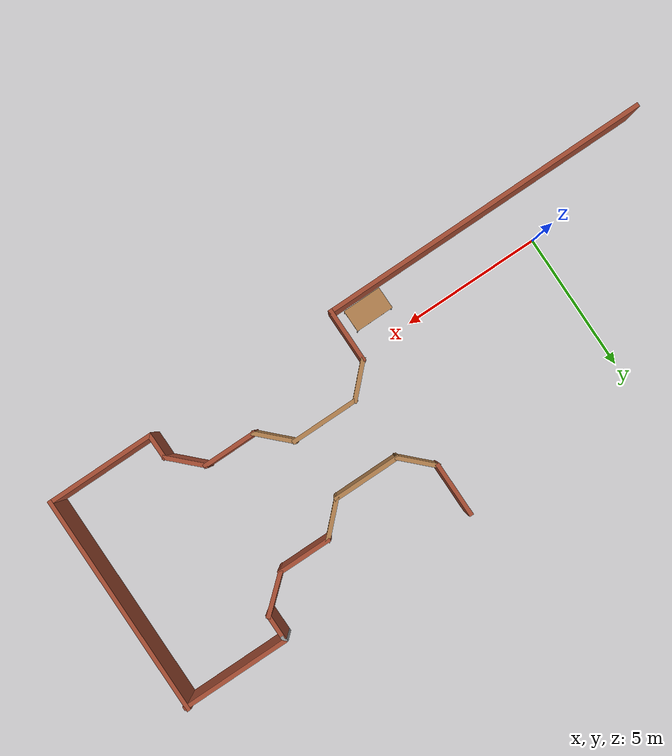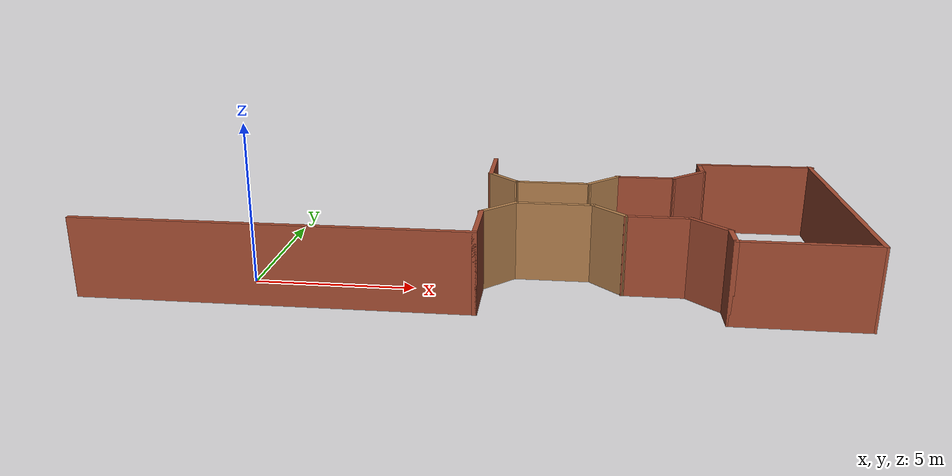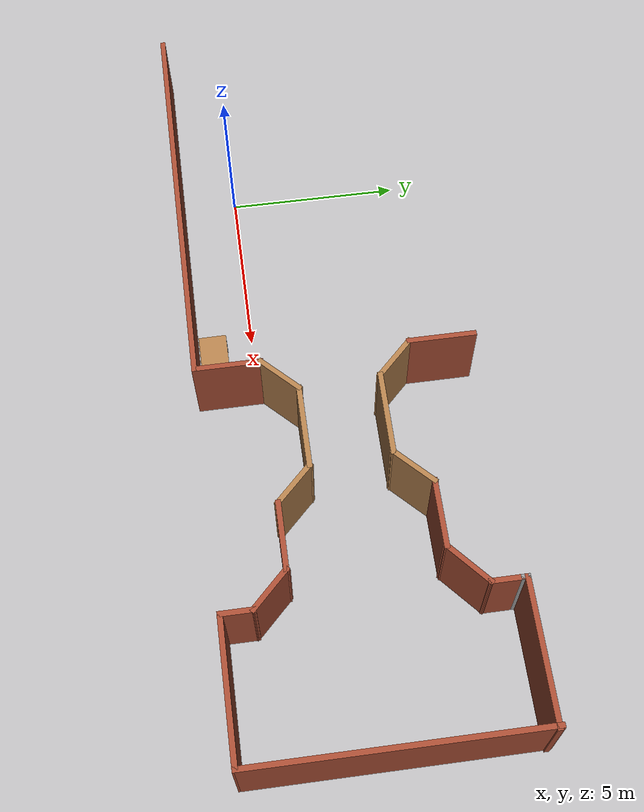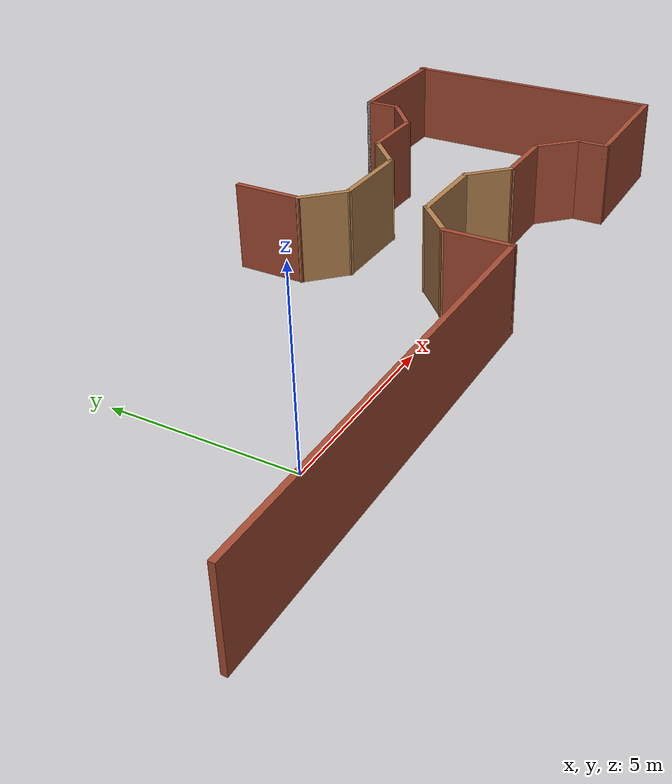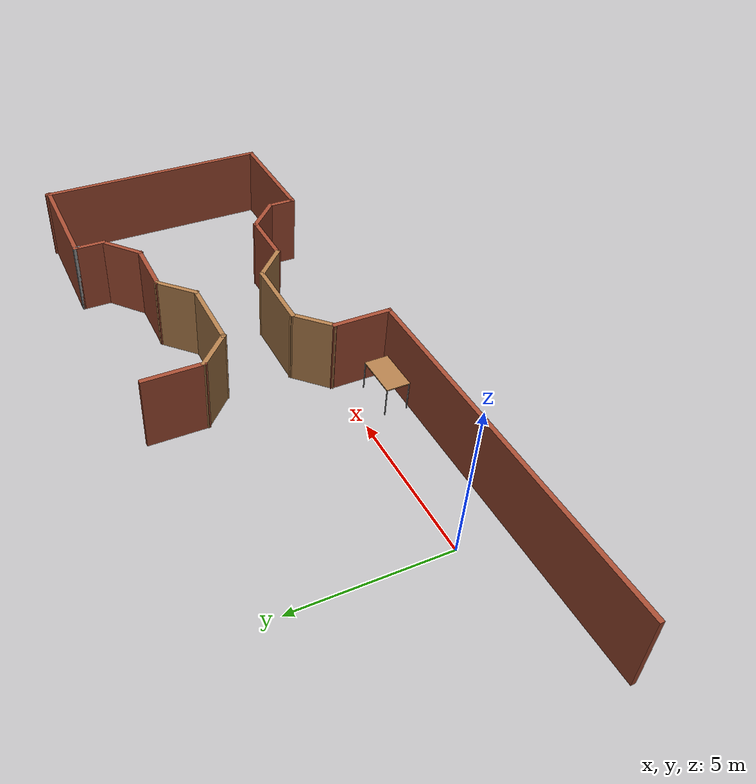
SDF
<sdf version="1.6">
 <world name="default">
  <model name="table">
   <static>0</static>
   <link name="link">
    <collision name="surface">
     <pose>0 0 1 0 -0 0</pose>
     <geometry><box><size>1.5 0.8 0.03</size></box></geometry>
     <surface><friction><ode><mu>0.6</mu><mu2>0.6</mu2></ode></friction></surface>
    </collision>
    <visual name="visual1">
     <pose>0 0 1 0 -0 0</pose>
     <geometry><box><size>1.4 0.8 0.04</size></box></geometry>
     <material>
      <script><uri>file://media/materials/scripts/gazebo.material</uri><name>Gazebo/Wood</name></script>
     </material>
    </visual>
    <collision name="front_left_leg">
     <pose>0.68 0.38 0.5 0 -0 0</pose>
     <geometry><cylinder><radius>0.02</radius><length>1</length></cylinder></geometry>
    </collision>
    <visual name="front_left_leg">
     <pose>0.68 0.38 0.5 0 -0 0</pose>
     <geometry><cylinder><radius>0.02</radius><length>1</length></cylinder></geometry>
     <material>
      <script><uri>file://media/materials/scripts/gazebo.material</uri><name>Gazebo/Grey</name></script>
     </material>
    </visual>
    <collision name="front_right_leg">
     <pose>0.68 -0.38 0.5 0 -0 0</pose>
     <geometry><cylinder><radius>0.02</radius><length>1</length></cylinder></geometry>
    </collision>
    <visual name="front_right_leg">
     <pose>0.68 -0.38 0.5 0 -0 0</pose>
     <geometry><cylinder><radius>0.02</radius><length>1</length></cylinder></geometry>
     <material>
      <script><uri>file://media/materials/scripts/gazebo.material</uri><name>Gazebo/Grey</name></script>
     </material>
    </visual>
    <collision name="back_right_leg">
     <pose>-0.68 -0.38 0.5 0 -0 0</pose>
     <geometry><cylinder><radius>0.02</radius><length>1</length></cylinder></geometry>
    </collision>
    <visual name="back_right_leg">
     <pose>-0.68 -0.38 0.5 0 -0 0</pose>
     <geometry><cylinder><radius>0.02</radius><length>1</length></cylinder></geometry>
     <material>
      <script><uri>file://media/materials/scripts/gazebo.material</uri><name>Gazebo/Grey</name></script>
     </material>
    </visual>
    <collision name="back_left_leg">
     <pose>-0.68 0.38 0.5 0 -0 0</pose>
     <geometry><cylinder><radius>0.02</radius><length>1</length></cylinder></geometry>
    </collision>
    <visual name="back_left_leg">
     <pose>-0.68 0.38 0.5 0 -0 0</pose>
     <geometry><cylinder><radius>0.02</radius><length>1</length></cylinder></geometry>
     <material>
      <script><uri>file://media/materials/scripts/gazebo.material</uri><name>Gazebo/Grey</name></script>
     </material>
    </visual>
    <inertial>
     <inertia><ixx>1</ixx><ixy>0</ixy><ixz>0</ixz><iyy>1</iyy><iyz>0</iyz><izz>1</izz></inertia>
     <mass>1</mass>
    </inertial>
   </link>
   <pose>5.92545 -1.12492 -7e-06 -0 4e-06 0.006025</pose>
  </model>
  <model name="NewEnv1_0">
   <link name="Wall_24">
    <pose>-0.034569 -4.00322 0 0 -0 0</pose>
    <visual name="Wall_24_Visual">
     <pose>0 0 1.25 0 -0 0</pose>
     <geometry><box><size>12 0.15 2.5</size></box></geometry>
     <material>
      <script><uri>file://media/materials/scripts/gazebo.material</uri><name>Gazebo/Bricks</name></script>
      <ambient>1 1 1 1</ambient>
      <diffuse>1 1 1 1</diffuse>
      <specular>0.2 0.2 0.2 1</specular>
      <emissive>0 0 0 1</emissive>
     </material>
    </visual>
    <collision name="Wall_24_Collision">
     <pose>0 0 1.25 0 -0 0</pose>
     <geometry><box><size>12 0.15 2.5</size></box></geometry>
     <surface>
      <friction>
       <ode><mu>1</mu><mu2>1</mu2><fdir1>0 0 0</fdir1><slip1>0</slip1><slip2>0</slip2></ode>
       <torsional>
        <coefficient>1</coefficient>
        <patch_radius>0</patch_radius>
        <surface_radius>0</surface_radius>
        <use_patch_radius>1</use_patch_radius>
        <ode><slip>0</slip></ode>
       </torsional>
      </friction>
      <bounce><restitution_coefficient>0</restitution_coefficient><threshold>1e+06</threshold></bounce>
      <contact>
       <collide_without_contact>0</collide_without_contact>
       <collide_without_contact_bitmask>1</collide_without_contact_bitmask>
       <collide_bitmask>1</collide_bitmask>
       <ode>
        <soft_cfm>0</soft_cfm>
        <soft_erp>0.2</soft_erp>
        <kp>1e+13</kp>
        <kd>1</kd>
        <max_vel>0.01</max_vel>
        <min_depth>0</min_depth>
       </ode>
       <bullet>
        <split_impulse>1</split_impulse>
        <split_impulse_penetration_threshold>-0.01</split_impulse_penetration_threshold>
        <soft_cfm>0</soft_cfm>
        <soft_erp>0.2</soft_erp>
        <kp>1e+13</kp>
        <kd>1</kd>
       </bullet>
      </contact>
     </surface>
    </collision>
   </link>
   <link name="Wall_25">
    <pose>5.89043 -3.07822 0 0 -0 1.5708</pose>
    <visual name="Wall_25_Visual">
     <pose>0 0 1.25 0 -0 0</pose>
     <geometry><box><size>2 0.15 2.5</size></box></geometry>
     <material>
      <script><uri>file://media/materials/scripts/gazebo.material</uri><name>Gazebo/Bricks</name></script>
      <ambient>1 1 1 1</ambient>
      <diffuse>1 1 1 1</diffuse>
      <specular>0.2 0.2 0.2 1</specular>
      <emissive>0 0 0 1</emissive>
     </material>
    </visual>
    <collision name="Wall_25_Collision">
     <pose>0 0 1.25 0 -0 0</pose>
     <geometry><box><size>2 0.15 2.5</size></box></geometry>
     <surface>
      <friction>
       <ode><mu>1</mu><mu2>1</mu2><fdir1>0 0 0</fdir1><slip1>0</slip1><slip2>0</slip2></ode>
       <torsional>
        <coefficient>1</coefficient>
        <patch_radius>0</patch_radius>
        <surface_radius>0</surface_radius>
        <use_patch_radius>1</use_patch_radius>
        <ode><slip>0</slip></ode>
       </torsional>
      </friction>
      <bounce><restitution_coefficient>0</restitution_coefficient><threshold>1e+06</threshold></bounce>
      <contact>
       <collide_without_contact>0</collide_without_contact>
       <collide_without_contact_bitmask>1</collide_without_contact_bitmask>
       <collide_bitmask>1</collide_bitmask>
       <ode>
        <soft_cfm>0</soft_cfm>
        <soft_erp>0.2</soft_erp>
        <kp>1e+13</kp>
        <kd>1</kd>
        <max_vel>0.01</max_vel>
        <min_depth>0</min_depth>
       </ode>
       <bullet>
        <split_impulse>1</split_impulse>
        <split_impulse_penetration_threshold>-0.01</split_impulse_penetration_threshold>
        <soft_cfm>0</soft_cfm>
        <soft_erp>0.2</soft_erp>
        <kp>1e+13</kp>
        <kd>1</kd>
       </bullet>
      </contact>
     </surface>
    </collision>
   </link>
   <link name="Wall_26">
    <pose>6.36773 -1.67592 0 0 -0 0.785398</pose>
    <visual name="Wall_26_Visual">
     <pose>0 0 1.25 0 -0 0</pose>
     <geometry><box><size>1.5 0.15 2.5</size></box></geometry>
     <material>
      <script><uri>file://media/materials/scripts/gazebo.material</uri><name>Gazebo/Wood</name></script>
      <ambient>1 1 1 1</ambient>
      <diffuse>1 1 1 1</diffuse>
      <specular>0.2 0.2 0.2 1</specular>
      <emissive>0 0 0 1</emissive>
     </material>
    </visual>
    <collision name="Wall_26_Collision">
     <pose>0 0 1.25 0 -0 0</pose>
     <geometry><box><size>1.5 0.15 2.5</size></box></geometry>
     <surface>
      <friction>
       <ode><mu>1</mu><mu2>1</mu2><fdir1>0 0 0</fdir1><slip1>0</slip1><slip2>0</slip2></ode>
       <torsional>
        <coefficient>1</coefficient>
        <patch_radius>0</patch_radius>
        <surface_radius>0</surface_radius>
        <use_patch_radius>1</use_patch_radius>
        <ode><slip>0</slip></ode>
       </torsional>
      </friction>
      <bounce><restitution_coefficient>0</restitution_coefficient><threshold>1e+06</threshold></bounce>
      <contact>
       <collide_without_contact>0</collide_without_contact>
       <collide_without_contact_bitmask>1</collide_without_contact_bitmask>
       <collide_bitmask>1</collide_bitmask>
       <ode>
        <soft_cfm>0</soft_cfm>
        <soft_erp>0.2</soft_erp>
        <kp>1e+13</kp>
        <kd>1</kd>
        <max_vel>0.01</max_vel>
        <min_depth>0</min_depth>
       </ode>
       <bullet>
        <split_impulse>1</split_impulse>
        <split_impulse_penetration_threshold>-0.01</split_impulse_penetration_threshold>
        <soft_cfm>0</soft_cfm>
        <soft_erp>0.2</soft_erp>
        <kp>1e+13</kp>
        <kd>1</kd>
       </bullet>
      </contact>
     </surface>
    </collision>
   </link>
   <link name="Wall_27">
    <pose>8.02003 -1.19863 0 0 -0 0</pose>
    <visual name="Wall_27_Visual">
     <pose>0 0 1.25 0 -0 0</pose>
     <geometry><box><size>2.5 0.15 2.5</size></box></geometry>
     <material>
      <script><uri>file://media/materials/scripts/gazebo.material</uri><name>Gazebo/Wood</name></script>
      <ambient>1 1 1 1</ambient>
      <diffuse>1 1 1 1</diffuse>
      <specular>0.2 0.2 0.2 1</specular>
      <emissive>0 0 0 1</emissive>
     </material>
    </visual>
    <collision name="Wall_27_Collision">
     <pose>0 0 1.25 0 -0 0</pose>
     <geometry><box><size>2.5 0.15 2.5</size></box></geometry>
     <surface>
      <friction>
       <ode><mu>1</mu><mu2>1</mu2><fdir1>0 0 0</fdir1><slip1>0</slip1><slip2>0</slip2></ode>
       <torsional>
        <coefficient>1</coefficient>
        <patch_radius>0</patch_radius>
        <surface_radius>0</surface_radius>
        <use_patch_radius>1</use_patch_radius>
        <ode><slip>0</slip></ode>
       </torsional>
      </friction>
      <bounce><restitution_coefficient>0</restitution_coefficient><threshold>1e+06</threshold></bounce>
      <contact>
       <collide_without_contact>0</collide_without_contact>
       <collide_without_contact_bitmask>1</collide_without_contact_bitmask>
       <collide_bitmask>1</collide_bitmask>
       <ode>
        <soft_cfm>0</soft_cfm>
        <soft_erp>0.2</soft_erp>
        <kp>1e+13</kp>
        <kd>1</kd>
        <max_vel>0.01</max_vel>
        <min_depth>0</min_depth>
       </ode>
       <bullet>
        <split_impulse>1</split_impulse>
        <split_impulse_penetration_threshold>-0.01</split_impulse_penetration_threshold>
        <soft_cfm>0</soft_cfm>
        <soft_erp>0.2</soft_erp>
        <kp>1e+13</kp>
        <kd>1</kd>
       </bullet>
      </contact>
     </surface>
    </collision>
   </link>
   <link name="Wall_28">
    <pose>9.67232 -1.67592 0 0 0 -0.785398</pose>
    <visual name="Wall_28_Visual">
     <pose>0 0 1.25 0 -0 0</pose>
     <geometry><box><size>1.5 0.15 2.5</size></box></geometry>
     <material>
      <script><uri>file://media/materials/scripts/gazebo.material</uri><name>Gazebo/Wood</name></script>
      <ambient>1 1 1 1</ambient>
      <diffuse>1 1 1 1</diffuse>
      <specular>0.2 0.2 0.2 1</specular>
      <emissive>0 0 0 1</emissive>
     </material>
    </visual>
    <collision name="Wall_28_Collision">
     <pose>0 0 1.25 0 -0 0</pose>
     <geometry><box><size>1.5 0.15 2.5</size></box></geometry>
     <surface>
      <friction>
       <ode><mu>1</mu><mu2>1</mu2><fdir1>0 0 0</fdir1><slip1>0</slip1><slip2>0</slip2></ode>
       <torsional>
        <coefficient>1</coefficient>
        <patch_radius>0</patch_radius>
        <surface_radius>0</surface_radius>
        <use_patch_radius>1</use_patch_radius>
        <ode><slip>0</slip></ode>
       </torsional>
      </friction>
      <bounce><restitution_coefficient>0</restitution_coefficient><threshold>1e+06</threshold></bounce>
      <contact>
       <collide_without_contact>0</collide_without_contact>
       <collide_without_contact_bitmask>1</collide_without_contact_bitmask>
       <collide_bitmask>1</collide_bitmask>
       <ode>
        <soft_cfm>0</soft_cfm>
        <soft_erp>0.2</soft_erp>
        <kp>1e+13</kp>
        <kd>1</kd>
        <max_vel>0.01</max_vel>
        <min_depth>0</min_depth>
       </ode>
       <bullet>
        <split_impulse>1</split_impulse>
        <split_impulse_penetration_threshold>-0.01</split_impulse_penetration_threshold>
        <soft_cfm>0</soft_cfm>
        <soft_erp>0.2</soft_erp>
        <kp>1e+13</kp>
        <kd>1</kd>
       </bullet>
      </contact>
     </surface>
    </collision>
   </link>
   <link name="Wall_29">
    <pose>11.0746 -2.15322 0 0 -0 0</pose>
    <visual name="Wall_29_Visual">
     <pose>0 0 1.25 0 -0 0</pose>
     <geometry><box><size>2 0.15 2.5</size></box></geometry>
     <material>
      <script><uri>file://media/materials/scripts/gazebo.material</uri><name>Gazebo/Bricks</name></script>
      <ambient>1 1 1 1</ambient>
      <diffuse>1 1 1 1</diffuse>
      <specular>0.2 0.2 0.2 1</specular>
      <emissive>0 0 0 1</emissive>
     </material>
    </visual>
    <collision name="Wall_29_Collision">
     <pose>0 0 1.25 0 -0 0</pose>
     <geometry><box><size>2 0.15 2.5</size></box></geometry>
     <surface>
      <friction>
       <ode><mu>1</mu><mu2>1</mu2><fdir1>0 0 0</fdir1><slip1>0</slip1><slip2>0</slip2></ode>
       <torsional>
        <coefficient>1</coefficient>
        <patch_radius>0</patch_radius>
        <surface_radius>0</surface_radius>
        <use_patch_radius>1</use_patch_radius>
        <ode><slip>0</slip></ode>
       </torsional>
      </friction>
      <bounce><restitution_coefficient>0</restitution_coefficient><threshold>1e+06</threshold></bounce>
      <contact>
       <collide_without_contact>0</collide_without_contact>
       <collide_without_contact_bitmask>1</collide_without_contact_bitmask>
       <collide_bitmask>1</collide_bitmask>
       <ode>
        <soft_cfm>0</soft_cfm>
        <soft_erp>0.2</soft_erp>
        <kp>1e+13</kp>
        <kd>1</kd>
        <max_vel>0.01</max_vel>
        <min_depth>0</min_depth>
       </ode>
       <bullet>
        <split_impulse>1</split_impulse>
        <split_impulse_penetration_threshold>-0.01</split_impulse_penetration_threshold>
        <soft_cfm>0</soft_cfm>
        <soft_erp>0.2</soft_erp>
        <kp>1e+13</kp>
        <kd>1</kd>
       </bullet>
      </contact>
     </surface>
    </collision>
   </link>
   <link name="Wall_30">
    <pose>12.4769 -2.63052 0 0 0 -0.785398</pose>
    <visual name="Wall_30_Visual">
     <pose>0 0 1.25 0 -0 0</pose>
     <geometry><box><size>1.5 0.15 2.5</size></box></geometry>
     <material>
      <script><uri>file://media/materials/scripts/gazebo.material</uri><name>Gazebo/Bricks</name></script>
      <ambient>1 1 1 1</ambient>
      <diffuse>1 1 1 1</diffuse>
      <specular>0.2 0.2 0.2 1</specular>
      <emissive>0 0 0 1</emissive>
     </material>
    </visual>
    <collision name="Wall_30_Collision">
     <pose>0 0 1.25 0 -0 0</pose>
     <geometry><box><size>1.5 0.15 2.5</size></box></geometry>
     <surface>
      <friction>
       <ode><mu>1</mu><mu2>1</mu2><fdir1>0 0 0</fdir1><slip1>0</slip1><slip2>0</slip2></ode>
       <torsional>
        <coefficient>1</coefficient>
        <patch_radius>0</patch_radius>
        <surface_radius>0</surface_radius>
        <use_patch_radius>1</use_patch_radius>
        <ode><slip>0</slip></ode>
       </torsional>
      </friction>
      <bounce><restitution_coefficient>0</restitution_coefficient><threshold>1e+06</threshold></bounce>
      <contact>
       <collide_without_contact>0</collide_without_contact>
       <collide_without_contact_bitmask>1</collide_without_contact_bitmask>
       <collide_bitmask>1</collide_bitmask>
       <ode>
        <soft_cfm>0</soft_cfm>
        <soft_erp>0.2</soft_erp>
        <kp>1e+13</kp>
        <kd>1</kd>
        <max_vel>0.01</max_vel>
        <min_depth>0</min_depth>
       </ode>
       <bullet>
        <split_impulse>1</split_impulse>
        <split_impulse_penetration_threshold>-0.01</split_impulse_penetration_threshold>
        <soft_cfm>0</soft_cfm>
        <soft_erp>0.2</soft_erp>
        <kp>1e+13</kp>
        <kd>1</kd>
       </bullet>
      </contact>
     </surface>
    </collision>
   </link>
   <link name="Wall_31">
    <pose>12.9542 -3.53281 0 0 0 -1.5708</pose>
    <visual name="Wall_31_Visual">
     <pose>0 0 1.25 0 -0 0</pose>
     <geometry><box><size>1 0.15 2.5</size></box></geometry>
     <material>
      <script><uri>file://media/materials/scripts/gazebo.material</uri><name>Gazebo/Bricks</name></script>
      <ambient>1 1 1 1</ambient>
      <diffuse>1 1 1 1</diffuse>
      <specular>0.2 0.2 0.2 1</specular>
      <emissive>0 0 0 1</emissive>
     </material>
    </visual>
    <collision name="Wall_31_Collision">
     <pose>0 0 1.25 0 -0 0</pose>
     <geometry><box><size>1 0.15 2.5</size></box></geometry>
     <surface>
      <friction>
       <ode><mu>1</mu><mu2>1</mu2><fdir1>0 0 0</fdir1><slip1>0</slip1><slip2>0</slip2></ode>
       <torsional>
        <coefficient>1</coefficient>
        <patch_radius>0</patch_radius>
        <surface_radius>0</surface_radius>
        <use_patch_radius>1</use_patch_radius>
        <ode><slip>0</slip></ode>
       </torsional>
      </friction>
      <bounce><restitution_coefficient>0</restitution_coefficient><threshold>1e+06</threshold></bounce>
      <contact>
       <collide_without_contact>0</collide_without_contact>
       <collide_without_contact_bitmask>1</collide_without_contact_bitmask>
       <collide_bitmask>1</collide_bitmask>
       <ode>
        <soft_cfm>0</soft_cfm>
        <soft_erp>0.2</soft_erp>
        <kp>1e+13</kp>
        <kd>1</kd>
        <max_vel>0.01</max_vel>
        <min_depth>0</min_depth>
       </ode>
       <bullet>
        <split_impulse>1</split_impulse>
        <split_impulse_penetration_threshold>-0.01</split_impulse_penetration_threshold>
        <soft_cfm>0</soft_cfm>
        <soft_erp>0.2</soft_erp>
        <kp>1e+13</kp>
        <kd>1</kd>
       </bullet>
      </contact>
     </surface>
    </collision>
   </link>
   <link name="Wall_32">
    <pose>14.8792 -3.95781 0 0 -0 0</pose>
    <visual name="Wall_32_Visual">
     <pose>0 0 1.25 0 -0 0</pose>
     <geometry><box><size>4 0.15 2.5</size></box></geometry>
     <material>
      <script><uri>file://media/materials/scripts/gazebo.material</uri><name>Gazebo/Bricks</name></script>
      <ambient>1 1 1 1</ambient>
      <diffuse>1 1 1 1</diffuse>
      <specular>0.2 0.2 0.2 1</specular>
      <emissive>0 0 0 1</emissive>
     </material>
    </visual>
    <collision name="Wall_32_Collision">
     <pose>0 0 1.25 0 -0 0</pose>
     <geometry><box><size>4 0.15 2.5</size></box></geometry>
     <surface>
      <friction>
       <ode><mu>1</mu><mu2>1</mu2><fdir1>0 0 0</fdir1><slip1>0</slip1><slip2>0</slip2></ode>
       <torsional>
        <coefficient>1</coefficient>
        <patch_radius>0</patch_radius>
        <surface_radius>0</surface_radius>
        <use_patch_radius>1</use_patch_radius>
        <ode><slip>0</slip></ode>
       </torsional>
      </friction>
      <bounce><restitution_coefficient>0</restitution_coefficient><threshold>1e+06</threshold></bounce>
      <contact>
       <collide_without_contact>0</collide_without_contact>
       <collide_without_contact_bitmask>1</collide_without_contact_bitmask>
       <collide_bitmask>1</collide_bitmask>
       <ode>
        <soft_cfm>0</soft_cfm>
        <soft_erp>0.2</soft_erp>
        <kp>1e+13</kp>
        <kd>1</kd>
        <max_vel>0.01</max_vel>
        <min_depth>0</min_depth>
       </ode>
       <bullet>
        <split_impulse>1</split_impulse>
        <split_impulse_penetration_threshold>-0.01</split_impulse_penetration_threshold>
        <soft_cfm>0</soft_cfm>
        <soft_erp>0.2</soft_erp>
        <kp>1e+13</kp>
        <kd>1</kd>
       </bullet>
      </contact>
     </surface>
    </collision>
   </link>
   <link name="Wall_33">
    <pose>16.8172 0.024879 0 0 -0 1.56755</pose>
    <visual name="Wall_33_Visual">
     <pose>0 0 1.25 0 -0 0</pose>
     <geometry><box><size>8.11543 0.15 2.5</size></box></geometry>
     <material>
      <script><uri>file://media/materials/scripts/gazebo.material</uri><name>Gazebo/Bricks</name></script>
      <ambient>1 1 1 1</ambient>
      <diffuse>1 1 1 1</diffuse>
      <specular>0.2 0.2 0.2 1</specular>
      <emissive>0 0 0 1</emissive>
     </material>
    </visual>
    <collision name="Wall_33_Collision">
     <pose>0 0 1.25 0 -0 0</pose>
     <geometry><box><size>8.11543 0.15 2.5</size></box></geometry>
     <surface>
      <friction>
       <ode><mu>1</mu><mu2>1</mu2><fdir1>0 0 0</fdir1><slip1>0</slip1><slip2>0</slip2></ode>
       <torsional>
        <coefficient>1</coefficient>
        <patch_radius>0</patch_radius>
        <surface_radius>0</surface_radius>
        <use_patch_radius>1</use_patch_radius>
        <ode><slip>0</slip></ode>
       </torsional>
      </friction>
      <bounce><restitution_coefficient>0</restitution_coefficient><threshold>1e+06</threshold></bounce>
      <contact>
       <collide_without_contact>0</collide_without_contact>
       <collide_without_contact_bitmask>1</collide_without_contact_bitmask>
       <collide_bitmask>1</collide_bitmask>
       <ode>
        <soft_cfm>0</soft_cfm>
        <soft_erp>0.2</soft_erp>
        <kp>1e+13</kp>
        <kd>1</kd>
        <max_vel>0.01</max_vel>
        <min_depth>0</min_depth>
       </ode>
       <bullet>
        <split_impulse>1</split_impulse>
        <split_impulse_penetration_threshold>-0.01</split_impulse_penetration_threshold>
        <soft_cfm>0</soft_cfm>
        <soft_erp>0.2</soft_erp>
        <kp>1e+13</kp>
        <kd>1</kd>
       </bullet>
      </contact>
     </surface>
    </collision>
   </link>
   <link name="Wall_58">
    <pose>5.79866 2.96259 0 0 0 -1.5708</pose>
    <visual name="Wall_58_Visual">
     <pose>0 0 1.25 0 -0 0</pose>
     <geometry><box><size>2 0.15 2.5</size></box></geometry>
     <material>
      <script><uri>file://media/materials/scripts/gazebo.material</uri><name>Gazebo/Bricks</name></script>
      <ambient>1 1 1 1</ambient>
      <diffuse>1 1 1 1</diffuse>
      <specular>0.2 0.2 0.2 1</specular>
      <emissive>0 0 0 1</emissive>
     </material>
    </visual>
    <collision name="Wall_58_Collision">
     <pose>0 0 1.25 0 -0 0</pose>
     <geometry><box><size>2 0.15 2.5</size></box></geometry>
     <surface>
      <friction>
       <ode><mu>1</mu><mu2>1</mu2><fdir1>0 0 0</fdir1><slip1>0</slip1><slip2>0</slip2></ode>
       <torsional>
        <coefficient>1</coefficient>
        <patch_radius>0</patch_radius>
        <surface_radius>0</surface_radius>
        <use_patch_radius>1</use_patch_radius>
        <ode><slip>0</slip></ode>
       </torsional>
      </friction>
      <bounce><restitution_coefficient>0</restitution_coefficient><threshold>1e+06</threshold></bounce>
      <contact>
       <collide_without_contact>0</collide_without_contact>
       <collide_without_contact_bitmask>1</collide_without_contact_bitmask>
       <collide_bitmask>1</collide_bitmask>
       <ode>
        <soft_cfm>0</soft_cfm>
        <soft_erp>0.2</soft_erp>
        <kp>1e+13</kp>
        <kd>1</kd>
        <max_vel>0.01</max_vel>
        <min_depth>0</min_depth>
       </ode>
       <bullet>
        <split_impulse>1</split_impulse>
        <split_impulse_penetration_threshold>-0.01</split_impulse_penetration_threshold>
        <soft_cfm>0</soft_cfm>
        <soft_erp>0.2</soft_erp>
        <kp>1e+13</kp>
        <kd>1</kd>
       </bullet>
      </contact>
     </surface>
    </collision>
   </link>
   <link name="Wall_59">
    <pose>6.27596 1.5603 0 0 0 -0.785398</pose>
    <visual name="Wall_59_Visual">
     <pose>0 0 1.25 0 -0 0</pose>
     <geometry><box><size>1.5 0.15 2.5</size></box></geometry>
     <material>
      <script><uri>file://media/materials/scripts/gazebo.material</uri><name>Gazebo/Wood</name></script>
      <ambient>1 1 1 1</ambient>
      <diffuse>1 1 1 1</diffuse>
      <specular>0.2 0.2 0.2 1</specular>
      <emissive>0 0 0 1</emissive>
     </material>
    </visual>
    <collision name="Wall_59_Collision">
     <pose>0 0 1.25 0 -0 0</pose>
     <geometry><box><size>1.5 0.15 2.5</size></box></geometry>
     <surface>
      <friction>
       <ode><mu>1</mu><mu2>1</mu2><fdir1>0 0 0</fdir1><slip1>0</slip1><slip2>0</slip2></ode>
       <torsional>
        <coefficient>1</coefficient>
        <patch_radius>0</patch_radius>
        <surface_radius>0</surface_radius>
        <use_patch_radius>1</use_patch_radius>
        <ode><slip>0</slip></ode>
       </torsional>
      </friction>
      <bounce><restitution_coefficient>0</restitution_coefficient><threshold>1e+06</threshold></bounce>
      <contact>
       <collide_without_contact>0</collide_without_contact>
       <collide_without_contact_bitmask>1</collide_without_contact_bitmask>
       <collide_bitmask>1</collide_bitmask>
       <ode>
        <soft_cfm>0</soft_cfm>
        <soft_erp>0.2</soft_erp>
        <kp>1e+13</kp>
        <kd>1</kd>
        <max_vel>0.01</max_vel>
        <min_depth>0</min_depth>
       </ode>
       <bullet>
        <split_impulse>1</split_impulse>
        <split_impulse_penetration_threshold>-0.01</split_impulse_penetration_threshold>
        <soft_cfm>0</soft_cfm>
        <soft_erp>0.2</soft_erp>
        <kp>1e+13</kp>
        <kd>1</kd>
       </bullet>
      </contact>
     </surface>
    </collision>
   </link>
   <link name="Wall_60">
    <pose>7.92826 1.083 0 0 -0 0</pose>
    <visual name="Wall_60_Visual">
     <pose>0 0 1.25 0 -0 0</pose>
     <geometry><box><size>2.5 0.15 2.5</size></box></geometry>
     <material>
      <script><uri>file://media/materials/scripts/gazebo.material</uri><name>Gazebo/Wood</name></script>
      <ambient>1 1 1 1</ambient>
      <diffuse>1 1 1 1</diffuse>
      <specular>0.2 0.2 0.2 1</specular>
      <emissive>0 0 0 1</emissive>
     </material>
    </visual>
    <collision name="Wall_60_Collision">
     <pose>0 0 1.25 0 -0 0</pose>
     <geometry><box><size>2.5 0.15 2.5</size></box></geometry>
     <surface>
      <friction>
       <ode><mu>1</mu><mu2>1</mu2><fdir1>0 0 0</fdir1><slip1>0</slip1><slip2>0</slip2></ode>
       <torsional>
        <coefficient>1</coefficient>
        <patch_radius>0</patch_radius>
        <surface_radius>0</surface_radius>
        <use_patch_radius>1</use_patch_radius>
        <ode><slip>0</slip></ode>
       </torsional>
      </friction>
      <bounce><restitution_coefficient>0</restitution_coefficient><threshold>1e+06</threshold></bounce>
      <contact>
       <collide_without_contact>0</collide_without_contact>
       <collide_without_contact_bitmask>1</collide_without_contact_bitmask>
       <collide_bitmask>1</collide_bitmask>
       <ode>
        <soft_cfm>0</soft_cfm>
        <soft_erp>0.2</soft_erp>
        <kp>1e+13</kp>
        <kd>1</kd>
        <max_vel>0.01</max_vel>
        <min_depth>0</min_depth>
       </ode>
       <bullet>
        <split_impulse>1</split_impulse>
        <split_impulse_penetration_threshold>-0.01</split_impulse_penetration_threshold>
        <soft_cfm>0</soft_cfm>
        <soft_erp>0.2</soft_erp>
        <kp>1e+13</kp>
        <kd>1</kd>
       </bullet>
      </contact>
     </surface>
    </collision>
   </link>
   <link name="Wall_61">
    <pose>9.59061 1.5603 0 0 -0 0.774973</pose>
    <visual name="Wall_61_Visual">
     <pose>0 0 1.25 0 -0 0</pose>
     <geometry><box><size>1.5143 0.15 2.5</size></box></geometry>
     <material>
      <script><uri>file://media/materials/scripts/gazebo.material</uri><name>Gazebo/Wood</name></script>
      <ambient>1 1 1 1</ambient>
      <diffuse>1 1 1 1</diffuse>
      <specular>0.2 0.2 0.2 1</specular>
      <emissive>0 0 0 1</emissive>
     </material>
    </visual>
    <collision name="Wall_61_Collision">
     <pose>0 0 1.25 0 -0 0</pose>
     <geometry><box><size>1.5143 0.15 2.5</size></box></geometry>
     <surface>
      <friction>
       <ode><mu>1</mu><mu2>1</mu2><fdir1>0 0 0</fdir1><slip1>0</slip1><slip2>0</slip2></ode>
       <torsional>
        <coefficient>1</coefficient>
        <patch_radius>0</patch_radius>
        <surface_radius>0</surface_radius>
        <use_patch_radius>1</use_patch_radius>
        <ode><slip>0</slip></ode>
       </torsional>
      </friction>
      <bounce><restitution_coefficient>0</restitution_coefficient><threshold>1e+06</threshold></bounce>
      <contact>
       <collide_without_contact>0</collide_without_contact>
       <collide_without_contact_bitmask>1</collide_without_contact_bitmask>
       <collide_bitmask>1</collide_bitmask>
       <ode>
        <soft_cfm>0</soft_cfm>
        <soft_erp>0.2</soft_erp>
        <kp>1e+13</kp>
        <kd>1</kd>
        <max_vel>0.01</max_vel>
        <min_depth>0</min_depth>
       </ode>
       <bullet>
        <split_impulse>1</split_impulse>
        <split_impulse_penetration_threshold>-0.01</split_impulse_penetration_threshold>
        <soft_cfm>0</soft_cfm>
        <soft_erp>0.2</soft_erp>
        <kp>1e+13</kp>
        <kd>1</kd>
       </bullet>
      </contact>
     </surface>
    </collision>
   </link>
   <link name="Wall_65">
    <pose>11.003 2.03759 0 0 -0 0</pose>
    <visual name="Wall_65_Visual">
     <pose>0 0 1.25 0 -0 0</pose>
     <geometry><box><size>2 0.15 2.5</size></box></geometry>
     <material>
      <script><uri>file://media/materials/scripts/gazebo.material</uri><name>Gazebo/Bricks</name></script>
      <ambient>1 1 1 1</ambient>
      <diffuse>1 1 1 1</diffuse>
      <specular>0.2 0.2 0.2 1</specular>
      <emissive>0 0 0 1</emissive>
     </material>
    </visual>
    <collision name="Wall_65_Collision">
     <pose>0 0 1.25 0 -0 0</pose>
     <geometry><box><size>2 0.15 2.5</size></box></geometry>
     <surface>
      <friction>
       <ode><mu>1</mu><mu2>1</mu2><fdir1>0 0 0</fdir1><slip1>0</slip1><slip2>0</slip2></ode>
       <torsional>
        <coefficient>1</coefficient>
        <patch_radius>0</patch_radius>
        <surface_radius>0</surface_radius>
        <use_patch_radius>1</use_patch_radius>
        <ode><slip>0</slip></ode>
       </torsional>
      </friction>
      <bounce><restitution_coefficient>0</restitution_coefficient><threshold>1e+06</threshold></bounce>
      <contact>
       <collide_without_contact>0</collide_without_contact>
       <collide_without_contact_bitmask>1</collide_without_contact_bitmask>
       <collide_bitmask>1</collide_bitmask>
       <ode>
        <soft_cfm>0</soft_cfm>
        <soft_erp>0.2</soft_erp>
        <kp>1e+13</kp>
        <kd>1</kd>
        <max_vel>0.01</max_vel>
        <min_depth>0</min_depth>
       </ode>
       <bullet>
        <split_impulse>1</split_impulse>
        <split_impulse_penetration_threshold>-0.01</split_impulse_penetration_threshold>
        <soft_cfm>0</soft_cfm>
        <soft_erp>0.2</soft_erp>
        <kp>1e+13</kp>
        <kd>1</kd>
       </bullet>
      </contact>
     </surface>
    </collision>
   </link>
   <link name="Wall_66">
    <pose>12.4757 2.51489 0 0 -0 0.716825</pose>
    <visual name="Wall_66_Visual">
     <pose>0 0 1.25 0 -0 0</pose>
     <geometry><box><size>1.60297 0.15 2.5</size></box></geometry>
     <material>
      <script><uri>file://media/materials/scripts/gazebo.material</uri><name>Gazebo/Bricks</name></script>
      <ambient>1 1 1 1</ambient>
      <diffuse>1 1 1 1</diffuse>
      <specular>0.2 0.2 0.2 1</specular>
      <emissive>0 0 0 1</emissive>
     </material>
    </visual>
    <collision name="Wall_66_Collision">
     <pose>0 0 1.25 0 -0 0</pose>
     <geometry><box><size>1.60297 0.15 2.5</size></box></geometry>
     <surface>
      <friction>
       <ode><mu>1</mu><mu2>1</mu2><fdir1>0 0 0</fdir1><slip1>0</slip1><slip2>0</slip2></ode>
       <torsional>
        <coefficient>1</coefficient>
        <patch_radius>0</patch_radius>
        <surface_radius>0</surface_radius>
        <use_patch_radius>1</use_patch_radius>
        <ode><slip>0</slip></ode>
       </torsional>
      </friction>
      <bounce><restitution_coefficient>0</restitution_coefficient><threshold>1e+06</threshold></bounce>
      <contact>
       <collide_without_contact>0</collide_without_contact>
       <collide_without_contact_bitmask>1</collide_without_contact_bitmask>
       <collide_bitmask>1</collide_bitmask>
       <ode>
        <soft_cfm>0</soft_cfm>
        <soft_erp>0.2</soft_erp>
        <kp>1e+13</kp>
        <kd>1</kd>
        <max_vel>0.01</max_vel>
        <min_depth>0</min_depth>
       </ode>
       <bullet>
        <split_impulse>1</split_impulse>
        <split_impulse_penetration_threshold>-0.01</split_impulse_penetration_threshold>
        <soft_cfm>0</soft_cfm>
        <soft_erp>0.2</soft_erp>
        <kp>1e+13</kp>
        <kd>1</kd>
       </bullet>
      </contact>
     </surface>
    </collision>
   </link>
   <link name="Wall_69">
    <pose>13.0234 3.41719 0 0 -0 1.5708</pose>
    <visual name="Wall_69_Visual">
     <pose>0 0 1.25 0 -0 0</pose>
     <geometry><box><size>1 0.15 2.5</size></box></geometry>
     <material>
      <script><uri>file://media/materials/scripts/gazebo.material</uri><name>Gazebo/Bricks</name></script>
      <ambient>1 1 1 1</ambient>
      <diffuse>1 1 1 1</diffuse>
      <specular>0.2 0.2 0.2 1</specular>
      <emissive>0 0 0 1</emissive>
     </material>
    </visual>
    <collision name="Wall_69_Collision">
     <pose>0 0 1.25 0 -0 0</pose>
     <geometry><box><size>1 0.15 2.5</size></box></geometry>
     <surface>
      <friction>
       <ode><mu>1</mu><mu2>1</mu2><fdir1>0 0 0</fdir1><slip1>0</slip1><slip2>0</slip2></ode>
       <torsional>
        <coefficient>1</coefficient>
        <patch_radius>0</patch_radius>
        <surface_radius>0</surface_radius>
        <use_patch_radius>1</use_patch_radius>
        <ode><slip>0</slip></ode>
       </torsional>
      </friction>
      <bounce><restitution_coefficient>0</restitution_coefficient><threshold>1e+06</threshold></bounce>
      <contact>
       <collide_without_contact>0</collide_without_contact>
       <collide_without_contact_bitmask>1</collide_without_contact_bitmask>
       <collide_bitmask>1</collide_bitmask>
       <ode>
        <soft_cfm>0</soft_cfm>
        <soft_erp>0.2</soft_erp>
        <kp>1e+13</kp>
        <kd>1</kd>
        <max_vel>0.01</max_vel>
        <min_depth>0</min_depth>
       </ode>
       <bullet>
        <split_impulse>1</split_impulse>
        <split_impulse_penetration_threshold>-0.01</split_impulse_penetration_threshold>
        <soft_cfm>0</soft_cfm>
        <soft_erp>0.2</soft_erp>
        <kp>1e+13</kp>
        <kd>1</kd>
       </bullet>
      </contact>
     </surface>
    </collision>
   </link>
   <link name="Wall_70">
    <pose>13.0234 3.89219 0 0 -0 1.5708</pose>
    <visual name="Wall_70_Visual">
     <pose>0 0 1.25 0 -0 0</pose>
     <geometry><box><size>0.25 0.15 2.5</size></box></geometry>
     <material>
      <script><uri>file://media/materials/scripts/gazebo.material</uri><name>Gazebo/Grey</name></script>
      <ambient>1 1 1 1</ambient>
      <diffuse>0.7 0.7 0.7 1</diffuse>
      <specular>0.01 0.01 0.01 1</specular>
      <emissive>0 0 0 1</emissive>
     </material>
    </visual>
    <collision name="Wall_70_Collision">
     <pose>0 0 1.25 0 -0 0</pose>
     <geometry><box><size>0.25 0.15 2.5</size></box></geometry>
     <surface>
      <friction>
       <ode><mu>1</mu><mu2>1</mu2><fdir1>0 0 0</fdir1><slip1>0</slip1><slip2>0</slip2></ode>
       <torsional>
        <coefficient>1</coefficient>
        <patch_radius>0</patch_radius>
        <surface_radius>0</surface_radius>
        <use_patch_radius>1</use_patch_radius>
        <ode><slip>0</slip></ode>
       </torsional>
      </friction>
      <bounce><restitution_coefficient>0</restitution_coefficient><threshold>1e+06</threshold></bounce>
      <contact>
       <collide_without_contact>0</collide_without_contact>
       <collide_without_contact_bitmask>1</collide_without_contact_bitmask>
       <collide_bitmask>1</collide_bitmask>
       <ode>
        <soft_cfm>0</soft_cfm>
        <soft_erp>0.2</soft_erp>
        <kp>1e+13</kp>
        <kd>1</kd>
        <max_vel>0.01</max_vel>
        <min_depth>0</min_depth>
       </ode>
       <bullet>
        <split_impulse>1</split_impulse>
        <split_impulse_penetration_threshold>-0.01</split_impulse_penetration_threshold>
        <soft_cfm>0</soft_cfm>
        <soft_erp>0.2</soft_erp>
        <kp>1e+13</kp>
        <kd>1</kd>
       </bullet>
      </contact>
     </surface>
    </collision>
   </link>
   <link name="Wall_71">
    <pose>14.9484 3.94219 0 0 -0 0</pose>
    <visual name="Wall_71_Visual">
     <pose>0 0 1.25 0 -0 0</pose>
     <geometry><box><size>4 0.15 2.5</size></box></geometry>
     <material>
      <script><uri>file://media/materials/scripts/gazebo.material</uri><name>Gazebo/Bricks</name></script>
      <ambient>1 1 1 1</ambient>
      <diffuse>1 1 1 1</diffuse>
      <specular>0.2 0.2 0.2 1</specular>
      <emissive>0 0 0 1</emissive>
     </material>
    </visual>
    <collision name="Wall_71_Collision">
     <pose>0 0 1.25 0 -0 0</pose>
     <geometry><box><size>4 0.15 2.5</size></box></geometry>
     <surface>
      <friction>
       <ode><mu>1</mu><mu2>1</mu2><fdir1>0 0 0</fdir1><slip1>0</slip1><slip2>0</slip2></ode>
       <torsional>
        <coefficient>1</coefficient>
        <patch_radius>0</patch_radius>
        <surface_radius>0</surface_radius>
        <use_patch_radius>1</use_patch_radius>
        <ode><slip>0</slip></ode>
       </torsional>
      </friction>
      <bounce><restitution_coefficient>0</restitution_coefficient><threshold>1e+06</threshold></bounce>
      <contact>
       <collide_without_contact>0</collide_without_contact>
       <collide_without_contact_bitmask>1</collide_without_contact_bitmask>
       <collide_bitmask>1</collide_bitmask>
       <ode>
        <soft_cfm>0</soft_cfm>
        <soft_erp>0.2</soft_erp>
        <kp>1e+13</kp>
        <kd>1</kd>
        <max_vel>0.01</max_vel>
        <min_depth>0</min_depth>
       </ode>
       <bullet>
        <split_impulse>1</split_impulse>
        <split_impulse_penetration_threshold>-0.01</split_impulse_penetration_threshold>
        <soft_cfm>0</soft_cfm>
        <soft_erp>0.2</soft_erp>
        <kp>1e+13</kp>
        <kd>1</kd>
       </bullet>
      </contact>
     </surface>
    </collision>
   </link>
   <static>1</static>
   <pose>1.1355 2.33064 0 0 -0 0</pose>
  </model>
 </world>
</sdf>
